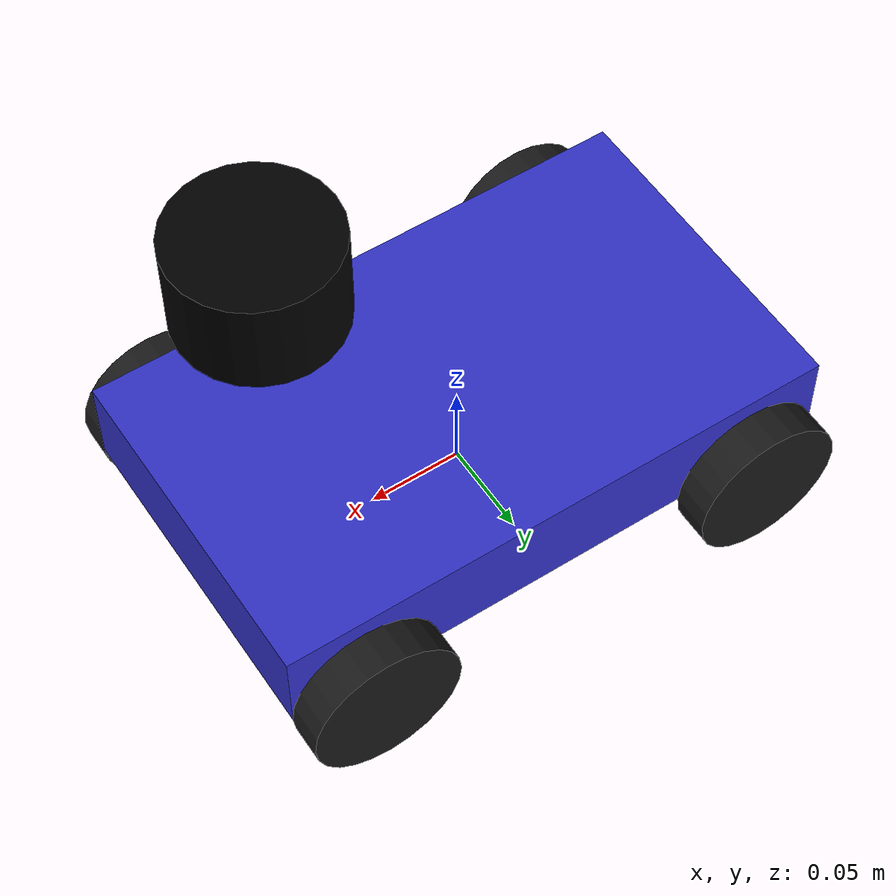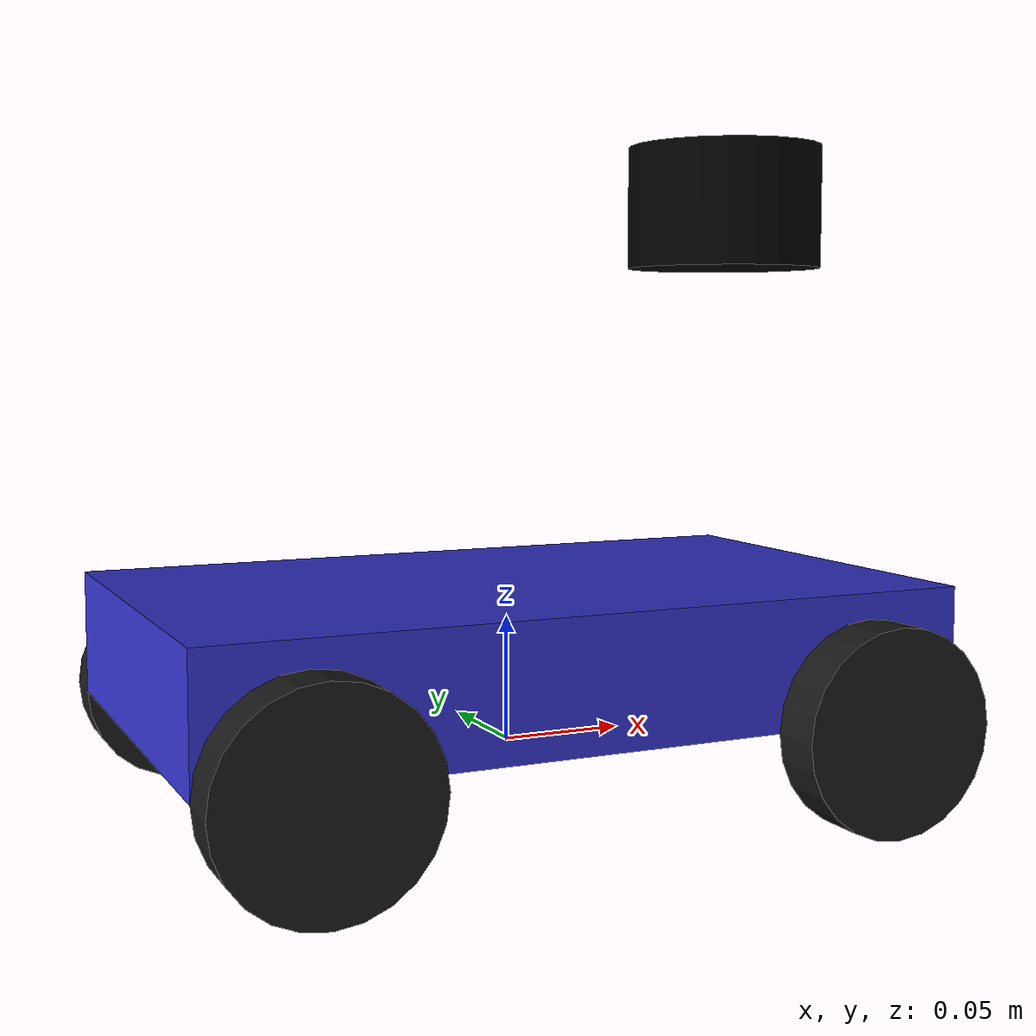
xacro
<?xml version="1.0"?>
<!--
  Simplified URDF for real Ackermann vehicle with VESC motors and Lidar.
  This version excludes Gazebo-specific plugins and controllers.
  Used for robot_state_publisher to provide TF transforms.
-->

<robot name="ackermann_steering_vehicle" xmlns:xacro="http://www.ros.org/wiki/xacro">

  <!-- Arguments -->
  <xacro:arg name="body_length" default="0.3" />
  <xacro:arg name="body_width" default="0.18" />
  <xacro:arg name="body_height" default="0.05" />
  <xacro:arg name="body_density" default="7850.0" />
  <xacro:arg name="wheel_radius" default="0.04" />
  <xacro:arg name="wheel_width" default="0.02" />
  <xacro:arg name="wheel_density" default="900.0" />
  <xacro:arg name="max_steering_angle" default="0.6108" />
  <xacro:arg name="max_velocity" default="2.0" />

  <xacro:arg name="lidar_height" default="0.05" />
  <xacro:arg name="lidar_radius" default="0.04" />
  <xacro:arg name="lidar_horizontal_offset" default="0.1" />
  <xacro:arg name="lidar_vertical_offset" default="0.15" />

  <!-- Mathematical Constants -->
  <xacro:property name="PI" value="3.14159265"/>

  <!-- Vehicle Properties -->
  <xacro:property name="body_length" value="$(arg body_length)"/>
  <xacro:property name="body_width" value="$(arg body_width)"/>
  <xacro:property name="body_height" value="$(arg body_height)"/>
  <xacro:property name="body_density" value="$(arg body_density)"/>
  <xacro:property name="wheel_radius" value="$(arg wheel_radius)"/>
  <xacro:property name="wheel_width" value="$(arg wheel_width)"/>
  <xacro:property name="wheel_density" value="$(arg wheel_density)"/>
  <xacro:property name="max_steering_angle" value="$(arg max_steering_angle)"/>

  <xacro:property name="body_mass" value="${body_density * body_length * body_height * body_width}"/>
  <xacro:property name="wheel_separation" value="${body_width + wheel_width}"/>
  <xacro:property name="wheel_offset" value="${body_length/2 - wheel_radius}"/>
  <xacro:property name="wheel_mass" value="${wheel_density * PI * wheel_radius * wheel_radius * wheel_width}"/>

  <xacro:property name="lidar_height" value="$(arg lidar_height)"/>
  <xacro:property name="lidar_radius" value="$(arg lidar_radius)"/>
  <xacro:property name="lidar_horizontal_offset" value="$(arg lidar_horizontal_offset)"/>
  <xacro:property name="lidar_vertical_offset" value="$(arg lidar_vertical_offset)"/>

  <!-- Base Link (for odometry and localization) -->
  <link name="base_link"/>

  <!-- Body Link -->
  <link name="body_link">
    <visual>
      <origin xyz="0.0 0.0 0.0" rpy="0.0 0.0 0.0"/>
      <geometry>
        <box size="${body_length} ${body_width} ${body_height}"/>
      </geometry>
      <material name="body_material">
        <color rgba="0.2 0.2 0.8 1.0"/>
      </material>
    </visual>
    <collision>
      <origin xyz="0.0 0.0 0.0" rpy="0.0 0.0 0.0"/>
      <geometry>
        <box size="${body_length} ${body_width} ${body_height}"/>
      </geometry>
    </collision>
    <inertial>
      <mass value="${body_mass}"/>
      <inertia ixx="0.001" ixy="0.0" ixz="0.0" iyy="0.001" iyz="0" izz="0.001"/>
      <origin xyz="0 0 0" rpy="0 0 0"/>
    </inertial>
  </link>

  <joint name="base_to_body" type="fixed">
    <parent link="base_link"/>
    <child link="body_link"/>
    <origin xyz="0 0 ${wheel_radius}" rpy="0 0 0"/>
  </joint>

  <!-- Front Left Wheel -->
  <link name="front_left_wheel_link">
    <visual>
      <origin xyz="0.0 0.0 0.0" rpy="1.570795 0.0 0.0"/>
      <geometry>
        <cylinder radius="${wheel_radius}" length="${wheel_width}"/>
      </geometry>
      <material name="wheel_material">
        <color rgba="0.1 0.1 0.1 1.0"/>
      </material>
    </visual>
    <collision>
      <origin xyz="0.0 0.0 0.0" rpy="1.570795 0.0 0.0"/>
      <geometry>
        <cylinder radius="${wheel_radius}" length="${wheel_width}"/>
      </geometry>
    </collision>
    <inertial>
      <mass value="${wheel_mass}"/>
      <inertia ixx="0.0001" ixy="0.0" ixz="0.0" iyy="0.0001" iyz="0" izz="0.0001"/>
      <origin xyz="0 0 0" rpy="0 0 0"/>
    </inertial>
  </link>

  <joint name="front_left_wheel_joint" type="continuous">
    <parent link="front_left_steer_link"/>
    <child link="front_left_wheel_link"/>
    <origin xyz="0.0 0.0 0.0" rpy="0.0 0.0 0.0"/>
    <axis xyz="0 1 0"/>
  </joint>

  <!-- Front Left Steering Link -->
  <link name="front_left_steer_link">
    <inertial>
      <mass value="0.01"/>
      <inertia ixx="0.00001" ixy="0.0" ixz="0.0" iyy="0.00001" iyz="0" izz="0.00001"/>
    </inertial>
  </link>

  <joint name="front_left_steer_joint" type="revolute">
    <parent link="body_link"/>
    <child link="front_left_steer_link"/>
    <origin xyz="${wheel_offset} ${wheel_separation/2} ${-body_height/2}" rpy="0 0 0"/>
    <axis xyz="0 0 1"/>
    <limit lower="${-max_steering_angle}" upper="${max_steering_angle}" effort="100.0" velocity="10.0"/>
  </joint>

  <!-- Front Right Wheel -->
  <link name="front_right_wheel_link">
    <visual>
      <origin xyz="0.0 0.0 0.0" rpy="1.570795 0.0 0.0"/>
      <geometry>
        <cylinder radius="${wheel_radius}" length="${wheel_width}"/>
      </geometry>
      <material name="wheel_material">
        <color rgba="0.1 0.1 0.1 1.0"/>
      </material>
    </visual>
    <collision>
      <origin xyz="0.0 0.0 0.0" rpy="1.570795 0.0 0.0"/>
      <geometry>
        <cylinder radius="${wheel_radius}" length="${wheel_width}"/>
      </geometry>
    </collision>
    <inertial>
      <mass value="${wheel_mass}"/>
      <inertia ixx="0.0001" ixy="0.0" ixz="0.0" iyy="0.0001" iyz="0" izz="0.0001"/>
      <origin xyz="0 0 0" rpy="0 0 0"/>
    </inertial>
  </link>

  <joint name="front_right_wheel_joint" type="continuous">
    <parent link="front_right_steer_link"/>
    <child link="front_right_wheel_link"/>
    <origin xyz="0.0 0.0 0.0" rpy="0.0 0.0 0.0"/>
    <axis xyz="0 1 0"/>
  </joint>

  <!-- Front Right Steering Link -->
  <link name="front_right_steer_link">
    <inertial>
      <mass value="0.01"/>
      <inertia ixx="0.00001" ixy="0.0" ixz="0.0" iyy="0.00001" iyz="0" izz="0.00001"/>
    </inertial>
  </link>

  <joint name="front_right_steer_joint" type="revolute">
    <parent link="body_link"/>
    <child link="front_right_steer_link"/>
    <origin xyz="${wheel_offset} ${-wheel_separation/2} ${-body_height/2}" rpy="0 0 0"/>
    <axis xyz="0 0 1"/>
    <limit lower="${-max_steering_angle}" upper="${max_steering_angle}" effort="100.0" velocity="10.0"/>
  </joint>

  <!-- Rear Left Wheel -->
  <link name="rear_left_wheel_link">
    <visual>
      <origin xyz="0.0 0.0 0.0" rpy="1.570795 0.0 0.0"/>
      <geometry>
        <cylinder radius="${wheel_radius}" length="${wheel_width}"/>
      </geometry>
      <material name="wheel_material">
        <color rgba="0.1 0.1 0.1 1.0"/>
      </material>
    </visual>
    <collision>
      <origin xyz="0.0 0.0 0.0" rpy="1.570795 0.0 0.0"/>
      <geometry>
        <cylinder radius="${wheel_radius}" length="${wheel_width}"/>
      </geometry>
    </collision>
    <inertial>
      <mass value="${wheel_mass}"/>
      <inertia ixx="0.0001" ixy="0.0" ixz="0.0" iyy="0.0001" iyz="0" izz="0.0001"/>
      <origin xyz="0 0 0" rpy="0 0 0"/>
    </inertial>
  </link>

  <joint name="rear_left_wheel_joint" type="continuous">
    <parent link="body_link"/>
    <child link="rear_left_wheel_link"/>
    <origin xyz="${-wheel_offset} ${wheel_separation/2} ${-body_height/2}" rpy="0 0 0"/>
    <axis xyz="0 1 0"/>
  </joint>

  <!-- Rear Right Wheel -->
  <link name="rear_right_wheel_link">
    <visual>
      <origin xyz="0.0 0.0 0.0" rpy="1.570795 0.0 0.0"/>
      <geometry>
        <cylinder radius="${wheel_radius}" length="${wheel_width}"/>
      </geometry>
      <material name="wheel_material">
        <color rgba="0.1 0.1 0.1 1.0"/>
      </material>
    </visual>
    <collision>
      <origin xyz="0.0 0.0 0.0" rpy="1.570795 0.0 0.0"/>
      <geometry>
        <cylinder radius="${wheel_radius}" length="${wheel_width}"/>
      </geometry>
    </collision>
    <inertial>
      <mass value="${wheel_mass}"/>
      <inertia ixx="0.0001" ixy="0.0" ixz="0.0" iyy="0.0001" iyz="0" izz="0.0001"/>
      <origin xyz="0 0 0" rpy="0 0 0"/>
    </inertial>
  </link>

  <joint name="rear_right_wheel_joint" type="continuous">
    <parent link="body_link"/>
    <child link="rear_right_wheel_link"/>
    <origin xyz="${-wheel_offset} ${-wheel_separation/2} ${-body_height/2}" rpy="0 0 0"/>
    <axis xyz="0 1 0"/>
  </joint>

  <!-- Lidar Link -->
  <link name="laser_frame">
    <visual>
      <origin xyz="0.0 0.0 0.0" rpy="0.0 0.0 0.0"/>
      <geometry>
        <cylinder radius="${lidar_radius}" length="${lidar_height}"/>
      </geometry>
      <material name="lidar_material">
        <color rgba="0.0 0.0 0.0 1.0"/>
      </material>
    </visual>
    <collision>
      <origin xyz="0.0 0.0 0.0" rpy="0.0 0.0 0.0"/>
      <geometry>
        <cylinder radius="${lidar_radius}" length="${lidar_height}"/>
      </geometry>
    </collision>
    <inertial>
      <mass value="0.125"/>
      <inertia ixx="0.00001" ixy="0.0" ixz="0.0" iyy="0.00001" iyz="0" izz="0.00001"/>
      <origin xyz="0 0 0" rpy="0 0 0"/>
    </inertial>
  </link>

  <joint name="lidar_joint" type="fixed">
    <parent link="body_link"/>
    <child link="laser_frame"/>
    <origin xyz="${lidar_horizontal_offset} 0.0 ${body_height/2 + lidar_vertical_offset}" rpy="0 0 0"/>
  </joint>

</robot>
